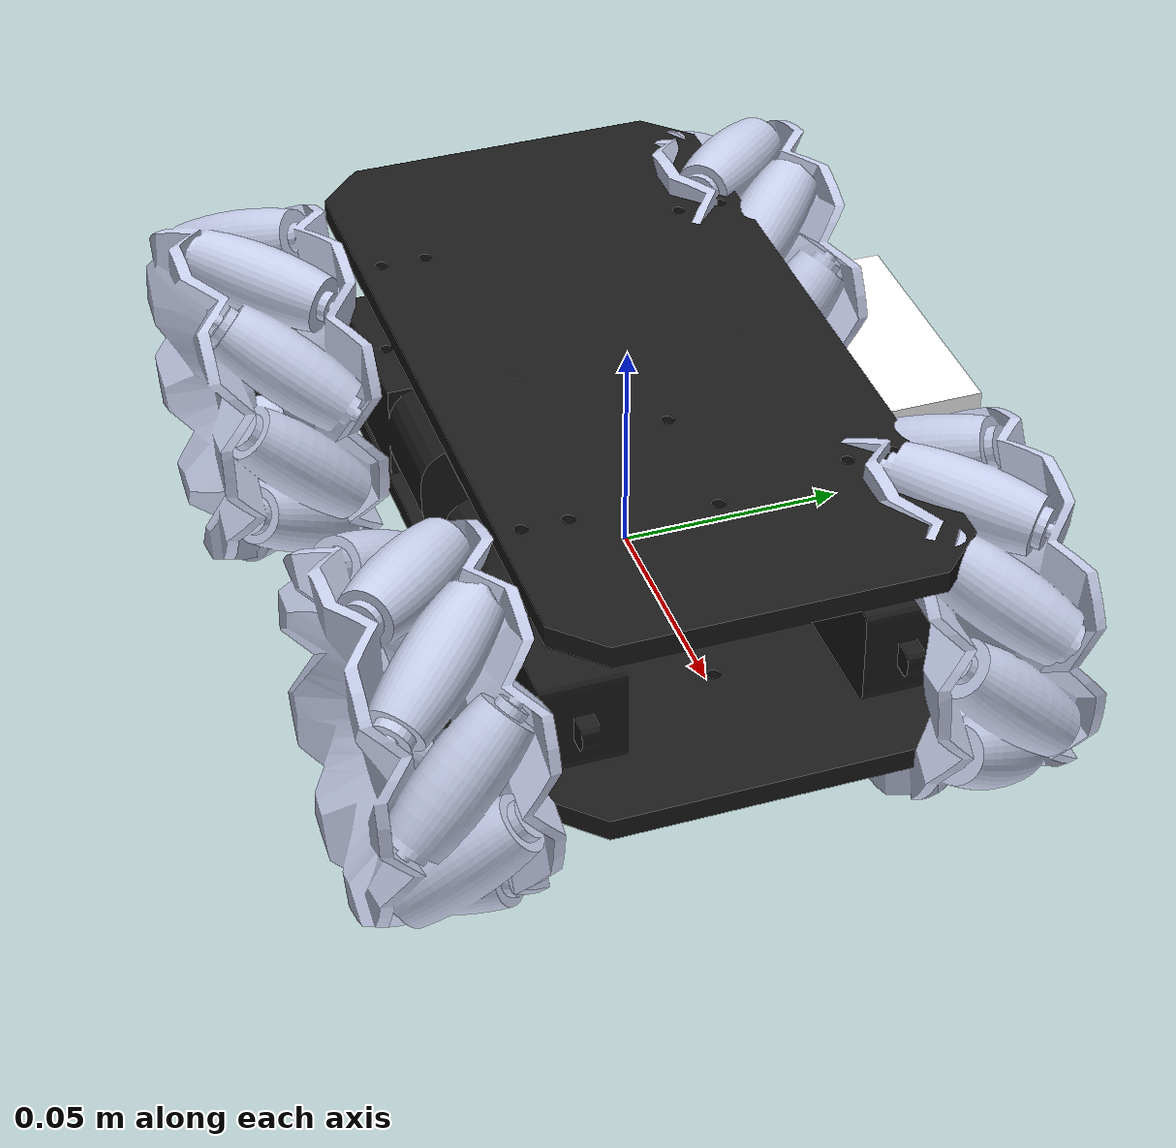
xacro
<?xml version="1.0"?>
<robot name="ares_laser_gazebo" xmlns:xacro="http://www.ros.org/wiki/xacro">
    <!-- Included URDF Files -->
    <include filename="$(find ares_description)/urdf/ares_base.xacro" />
	<ares_base />
    <!--xacro:include filename="$(find ares_description)/urdf/sensors/kinect.xacro" /-->

    <!-- kinect -->

</robot>

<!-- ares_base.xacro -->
<robot name="ares_base" xmlns:xacro="http://www.ros.org/wiki/xacro">
	<macro name="ares_base">
		<link name="dummy" />
		<link name="base_link">
			<inertial>
				<origin xyz="0.00000813 0 0.02322078" />
				<mass value="0.55722619" />
				<inertia ixx="0.00067251" ixy="0" ixz="0" iyy="0.0016127" iyz="0" izz="0.00182111" />
			</inertial>
			<visual>
				<origin xyz="0 0 0" rpy="0 0 0" />
				<geometry>
					<mesh filename="package://ares_description/meshes/base_link.STL" />
				</geometry>
				<material name="">
					<color rgba="0.10196 0.10196 0.10196 1" />
				</material>
			</visual>
			<collision>
				<origin xyz="0 0 0" rpy="0 0 0" />
				<geometry>
					<mesh filename="package://ares_description/meshes/base_link.STL" />
				</geometry>
			</collision>
		</link>
		<joint name="dummy_joint" type="fixed">
			<parent link="dummy"/>
			<child link="base_link"/>
		</joint>
		<link name="wheel_lf_link">
			<inertial>
				<origin xyz="0 0.00856913 0" rpy="0 0 0" />
				<mass value="0.07503549" />
				<inertia ixx="0.00004285" ixy="0" ixz="0" iyy="0.00007349" iyz="0" izz="0.00004285" />
			</inertial>
			<visual>
				<origin xyz="0 0 0" rpy="0 0 0" />
				<geometry>
					<mesh filename="package://ares_description/meshes/wheel_lf_link.STL" />
				</geometry>
				<material name="">
					<color rgba="0.79216 0.81961 0.93333 1" />
				</material>
			</visual>
			<collision>
				<origin xyz="0 0.0085707 0" rpy="0 0 0" />
				<geometry>
					<mesh filename="package://ares_description/meshes/wheel_lf_link.STL" />
				</geometry>
			</collision>
		</link>
		<joint name="wheel_lf_joint" type="continuous">
			<origin xyz="0.0614863916393112 0.0574 0.01625" rpy="0 0 0" />
			<parent link="base_link" />
			<child link="wheel_lf_link" />
			<axis xyz="0 -1 0" />
		</joint>
		<link name="wheel_lb_link">
			<inertial>
				<origin xyz="0 0.00856913 0" rpy="0 0 0" />
				<mass value="0.07503549" />
				<inertia ixx="0.00004285" ixy="0" ixz="0" iyy="0.00007349" iyz="0" izz="0.00004285" />
			</inertial>
			<visual>
				<origin xyz="0 0 0" rpy="0 0 0" />
				<geometry>
					<mesh filename="package://ares_description/meshes/wheel_lb_link.STL" />
				</geometry>
				<material name="">
					<color rgba="0.79216 0.81961 0.93333 1" />
				</material>
			</visual>
			<collision>
				<origin xyz="0 0 0" rpy="0 0 0" />
				<geometry>
					<mesh filename="package://ares_description/meshes/wheel_lb_link.STL" />
				</geometry>
			</collision>
		</link>
		<joint name="wheel_lb_joint" type="continuous">
			<origin xyz="-0.0614863916393112 0.0574 0.01625" rpy="0 0 0" />
			<parent link="base_link" />
			<child link="wheel_lb_link" />
			<axis xyz="0 -1 0" />
		</joint>
		<link name="wheel_rf_link">
			<inertial>
				<origin xyz="0 0.00856913 0" rpy="0 0 0" />
				<mass value="0.07503549" />
				<inertia ixx="0.00004285" ixy="0" ixz="0" iyy="0.00007349" iyz="0" izz="0.00004285" />
			</inertial>
			<visual>
				<origin xyz="0 0 0" rpy="0 0 0" />
				<geometry>
					<mesh filename="package://ares_description/meshes/wheel_rf_link.STL" />
				</geometry>
				<material name="">
					<color rgba="0.79216 0.81961 0.93333 1" />
				</material>
			</visual>
			<collision>
				<origin xyz="0 0 0" rpy="0 0 0" />
				<geometry>
					<mesh filename="package://ares_description/meshes/wheel_rf_link.STL" />
				</geometry>
			</collision>
		</link>
		<joint name="wheel_rf_joint" type="continuous">
			<origin xyz="0.0614863916393112 -0.0574 0.01625" rpy="3.14159265358979 0 0" />
			<parent link="base_link" />
			<child link="wheel_rf_link" />
			<axis xyz="0 -1 0" />
		</joint>
		<link name="wheel_rb_link">
			<inertial>
				<origin xyz="0 0.00856913 0" rpy="0 0 0" />
				<mass value="0.07503549" />
				<inertia ixx="0.00004285" ixy="0" ixz="0" iyy="0.00007349" iyz="0" izz="0.00004285" />
			</inertial>
			<visual>
				<origin xyz="0 0 0" rpy="0 0 0" />
				<geometry>
					<mesh filename="package://ares_description/meshes/wheel_rb_link.STL" />
				</geometry>
				<material name="">
					<color rgba="0.79216 0.81961 0.93333 1" />
				</material>
			</visual>
			<collision>
				<origin xyz="0 0 0" rpy="0 0 0" />
				<geometry>
					<mesh filename="package://ares_description/meshes/wheel_rb_link.STL" />
				</geometry>
			</collision>
		</link>
		<joint name="wheel_rb_joint" type="continuous">
			<origin xyz="-0.0614863916393112 -0.0574 0.01625" rpy="3.14159265358979 0 0" />
			<parent link="base_link" />
			<child link="wheel_rb_link" />
			<axis xyz="0 -1 0" />
		</joint>
		<link name="controller_link">
			<inertial>
				<origin xyz="0 0 0" rpy="0 0 0" />
				<mass value="0" />
				<inertia ixx="0" ixy="0" ixz="0" iyy="0" iyz="0" izz="0" />
			</inertial>
			<visual>
				<origin xyz="0 0 0" rpy="0 0 0" />
				<geometry>
					<mesh filename="package://ares_description/meshes/controller_link.STL" />
				</geometry>
				<material name="">
					<color rgba="1 1 1 1" />
				</material>
			</visual>
			<collision>
				<origin xyz="0 0 0" rpy="0 0 0" />
				<geometry>
					<mesh filename="package://ares_description/meshes/controller_link.STL" />
				</geometry>
			</collision>
		</link>
		<joint name="controller_joint" type="fixed">
			<origin xyz="0 0 0" rpy="0 0 0" />
			<parent link="base_link" />
			<child link="controller_link" />
			<axis xyz="0 0 0" />
		</joint>
		<gazebo>
			<plugin name="mecanum_controller" filename="libgazebo_ros_planar_move.so">
				<commandTopic>cmd_vel</commandTopic>
				<odometryTopic>odom</odometryTopic>
				<odometryFrame>odom</odometryFrame>
				<leftFrontJoint>wheel_lf_joint</leftFrontJoint>
				<rightFrontJoint>wheel_rf_joint</rightFrontJoint>
				<leftRearJoint>wheel_lb_joint</leftRearJoint>
				<rightRearJoint>wheel_rb_joint</rightRearJoint>
				<odometryRate>100.0</odometryRate>
				<robotBaseFrame>base_link</robotBaseFrame>
			</plugin>
			<plugin name="p3d_base_controller" filename="libgazebo_ros_p3d.so">
                <alwaysOn>true</alwaysOn>
                <updateRate>50</updateRate>
                <bodyName>base_link</bodyName>
   				<topicName>base_pose_ground_truth</topicName>
                <gaussianNoise>0.00</gaussianNoise>
                <frameName>world</frameName>
                <xyzOffsets>0 0 0</xyzOffsets>
   				<rpyOffsets>0 0 0</rpyOffsets>
 			</plugin>

		</gazebo>
	</macro>
</robot>
